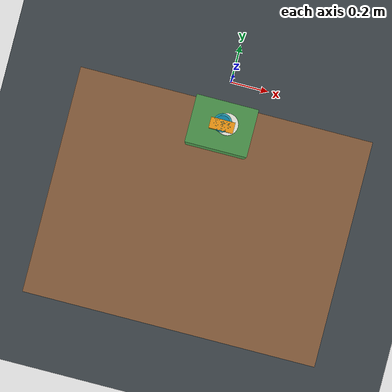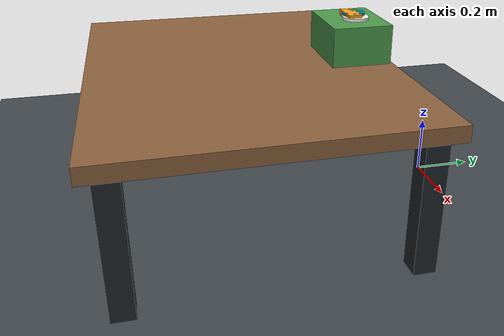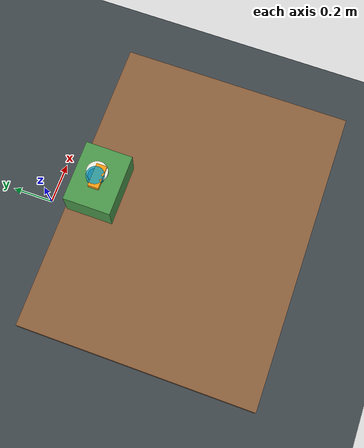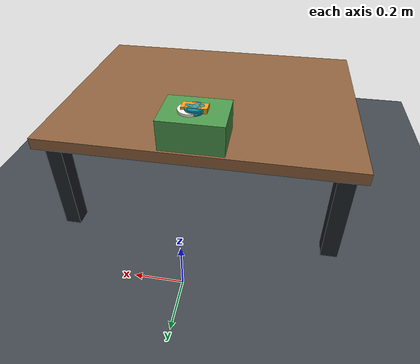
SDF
<?xml version="1.0"?>
<sdf version="1.6">
  <world name="openarm_workcell">
    <gravity>0 0 -9.81</gravity>
    <physics name="ode_physics" type="ode">
      <max_step_size>0.001</max_step_size>
      <real_time_update_rate>1000</real_time_update_rate>
      <real_time_factor>1.0</real_time_factor>
      <ode>
        <solver>
          <type>quick</type>
          <iters>80</iters>
          <sor>1.3</sor>
        </solver>
      </ode>
    </physics>

    <scene>
      <ambient>0.45 0.45 0.45 1</ambient>
      <background>0.72 0.79 0.86 1</background>
      <shadows>true</shadows>
      <grid>true</grid>
    </scene>

    <light name="sun" type="directional">
      <pose>0 0 6 0 0 0</pose>
      <cast_shadows>true</cast_shadows>
      <diffuse>0.85 0.85 0.82 1</diffuse>
      <specular>0.25 0.25 0.25 1</specular>
      <direction>-0.35 -0.25 -1</direction>
      <attenuation>
        <range>1000</range>
        <constant>0.4</constant>
        <linear>0.08</linear>
        <quadratic>0.01</quadratic>
      </attenuation>
    </light>

    <!-- Gazebo/ROS state services: /gazebo/get_entity_state and
         /gazebo/set_entity_state, used by the bimanual carry node to verify
         and reset object poses between test runs. -->
    <plugin name="gazebo_ros_state" filename="libgazebo_ros_state.so">
      <ros><namespace>/gazebo</namespace></ros>
      <update_rate>10.0</update_rate>
    </plugin>

    <model name="ground_plane">
      <static>true</static>
      <link name="ground">
        <collision name="collision">
          <geometry><plane><normal>0 0 1</normal><size>8 8</size></plane></geometry>
          <surface><contact><ode><max_vel>0.1</max_vel><min_depth>0.002</min_depth></ode></contact><friction><ode><mu>1.0</mu><mu2>1.0</mu2></ode></friction></surface>
        </collision>
        <visual name="visual">
          <geometry><plane><normal>0 0 1</normal><size>8 8</size></plane></geometry>
          <material><ambient>0.18 0.20 0.22 1</ambient><diffuse>0.25 0.28 0.30 1</diffuse></material>
        </visual>
      </link>
    </model>

    <!-- The robot faces -Y. Table top surface at z = 0.485; the near edge
         sits at y = -0.20, just in front of the robot body. -->
    <model name="work_table">
      <static>true</static>
      <pose>0 -0.70 0 0 0 0</pose>
      <link name="table">
        <collision name="top_collision">
          <pose>0 0 0.46 0 0 0</pose>
          <geometry><box><size>1.30 1.00 0.05</size></box></geometry>
          <surface><contact><ode><max_vel>0.1</max_vel><min_depth>0.002</min_depth></ode></contact><friction><ode><mu>0.9</mu><mu2>0.9</mu2></ode></friction></surface>
        </collision>
        <visual name="top_visual">
          <pose>0 0 0.46 0 0 0</pose>
          <geometry><box><size>1.30 1.00 0.05</size></box></geometry>
          <material><ambient>0.35 0.24 0.15 1</ambient><diffuse>0.55 0.38 0.24 1</diffuse></material>
        </visual>
        <collision name="leg_fl_collision"><pose>0.58 -0.43 0.225 0 0 0</pose><geometry><box><size>0.07 0.07 0.45</size></box></geometry><surface><contact><ode><max_vel>0.1</max_vel><min_depth>0.002</min_depth></ode></contact></surface></collision>
        <collision name="leg_fr_collision"><pose>-0.58 -0.43 0.225 0 0 0</pose><geometry><box><size>0.07 0.07 0.45</size></box></geometry><surface><contact><ode><max_vel>0.1</max_vel><min_depth>0.002</min_depth></ode></contact></surface></collision>
        <collision name="leg_bl_collision"><pose>0.58 0.43 0.225 0 0 0</pose><geometry><box><size>0.07 0.07 0.45</size></box></geometry><surface><contact><ode><max_vel>0.1</max_vel><min_depth>0.002</min_depth></ode></contact></surface></collision>
        <collision name="leg_br_collision"><pose>-0.58 0.43 0.225 0 0 0</pose><geometry><box><size>0.07 0.07 0.45</size></box></geometry><surface><contact><ode><max_vel>0.1</max_vel><min_depth>0.002</min_depth></ode></contact></surface></collision>
        <visual name="leg_fl_visual"><pose>0.58 -0.43 0.225 0 0 0</pose><geometry><box><size>0.07 0.07 0.45</size></box></geometry><material><diffuse>0.13 0.15 0.17 1</diffuse></material></visual>
        <visual name="leg_fr_visual"><pose>-0.58 -0.43 0.225 0 0 0</pose><geometry><box><size>0.07 0.07 0.45</size></box></geometry><material><diffuse>0.13 0.15 0.17 1</diffuse></material></visual>
        <visual name="leg_bl_visual"><pose>0.58 0.43 0.225 0 0 0</pose><geometry><box><size>0.07 0.07 0.45</size></box></geometry><material><diffuse>0.13 0.15 0.17 1</diffuse></material></visual>
        <visual name="leg_br_visual"><pose>-0.58 0.43 0.225 0 0 0</pose><geometry><box><size>0.07 0.07 0.45</size></box></geometry><material><diffuse>0.13 0.15 0.17 1</diffuse></material></visual>
      </link>
    </model>

    <!-- Grasp-test objects. Start poses sit inside the bimanual workspace
         (robot world frame = gazebo z minus the 0.38 m spawn offset). -->
    <model name="water_bottle">
      <pose>0 -0.30 0.56 0 0 0</pose>
      <link name="bottle">
        <inertial><mass>0.32</mass><inertia><ixx>0.0006</ixx><iyy>0.0006</iyy><izz>0.0003</izz></inertia></inertial>
        <collision name="body"><geometry><cylinder><radius>0.038</radius><length>0.15</length></cylinder></geometry><surface><contact><ode><max_vel>0.1</max_vel><min_depth>0.002</min_depth></ode></contact><friction><ode><mu>0.9</mu><mu2>0.9</mu2></ode></friction></surface></collision>
        <visual name="body_visual"><geometry><cylinder><radius>0.038</radius><length>0.15</length></cylinder></geometry><material><ambient>0.08 0.45 0.52 0.85</ambient><diffuse>0.10 0.65 0.75 0.85</diffuse></material></visual>
        <visual name="cap"><pose>0 0 0.062 0 0 0</pose><geometry><cylinder><radius>0.030</radius><length>0.022</length></cylinder></geometry><material><diffuse>0.08 0.18 0.55 1</diffuse></material></visual>
      </link>
    </model>

    <model name="food_can">
      <pose>0 -0.30 0.55 0 0 0</pose>
      <link name="can">
        <inertial><mass>0.35</mass><inertia><ixx>0.0005</ixx><iyy>0.0005</iyy><izz>0.0002</izz></inertia></inertial>
        <collision name="collision"><geometry><cylinder><radius>0.035</radius><length>0.13</length></cylinder></geometry><surface><contact><ode><max_vel>0.1</max_vel><min_depth>0.002</min_depth></ode></contact></surface></collision>
        <visual name="visual"><geometry><cylinder><radius>0.035</radius><length>0.13</length></cylinder></geometry><material><ambient>0.04 0.18 0.55 1</ambient><diffuse>0.06 0.32 0.85 1</diffuse><specular>0.35 0.35 0.35 1</specular></material></visual>
      </link>
    </model>

    <model name="cereal_box">
      <pose>0 -0.31 0.56 0 0 0</pose>
      <link name="box">
        <inertial><mass>0.28</mass><inertia><ixx>0.0010</ixx><iyy>0.0005</iyy><izz>0.0012</izz></inertia></inertial>
        <collision name="collision"><geometry><box><size>0.10 0.045 0.15</size></box></geometry><surface><contact><ode><max_vel>0.1</max_vel><min_depth>0.002</min_depth></ode></contact></surface></collision>
        <visual name="visual"><geometry><box><size>0.10 0.045 0.15</size></box></geometry><material><ambient>0.92 0.48 0.05 1</ambient><diffuse>0.98 0.62 0.08 1</diffuse></material></visual>
      </link>
    </model>

    <model name="coffee_mug">
      <!-- Yaw +90 deg puts the handle on the robot-facing (-Y) side. -->
      <pose>0.02 -0.30 0.555 0 0 1.5708</pose>
      <link name="mug">
        <inertial><mass>0.25</mass><inertia><ixx>0.0004</ixx><iyy>0.0004</iyy><izz>0.0003</izz></inertia></inertial>
        <collision name="body"><geometry><cylinder><radius>0.045</radius><length>0.14</length></cylinder></geometry><surface><contact><ode><max_vel>0.1</max_vel><min_depth>0.002</min_depth></ode></contact><friction><ode><mu>0.8</mu><mu2>0.8</mu2></ode></friction></surface></collision>
        <collision name="handle_top"><pose>-0.062 0 0.035 0 0 0</pose><geometry><box><size>0.055 0.018 0.018</size></box></geometry><surface><contact><ode><max_vel>0.1</max_vel><min_depth>0.002</min_depth></ode></contact></surface></collision>
        <collision name="handle_side"><pose>-0.088 0 0 0 0 0</pose><geometry><box><size>0.018 0.018 0.080</size></box></geometry><surface><contact><ode><max_vel>0.1</max_vel><min_depth>0.002</min_depth></ode></contact></surface></collision>
        <collision name="handle_bottom"><pose>-0.062 0 -0.035 0 0 0</pose><geometry><box><size>0.055 0.018 0.018</size></box></geometry><surface><contact><ode><max_vel>0.1</max_vel><min_depth>0.002</min_depth></ode></contact></surface></collision>
        <visual name="body_visual"><geometry><cylinder><radius>0.045</radius><length>0.14</length></cylinder></geometry><material><ambient>0.82 0.82 0.78 1</ambient><diffuse>0.95 0.95 0.90 1</diffuse></material></visual>
        <visual name="handle_top_visual"><pose>-0.062 0 0.035 0 0 0</pose><geometry><box><size>0.055 0.018 0.018</size></box></geometry><material><diffuse>0.95 0.95 0.90 1</diffuse></material></visual>
        <visual name="handle_side_visual"><pose>-0.088 0 0 0 0 0</pose><geometry><box><size>0.018 0.018 0.080</size></box></geometry><material><diffuse>0.95 0.95 0.90 1</diffuse></material></visual>
        <visual name="handle_bottom_visual"><pose>-0.062 0 -0.035 0 0 0</pose><geometry><box><size>0.055 0.018 0.018</size></box></geometry><material><diffuse>0.95 0.95 0.90 1</diffuse></material></visual>
      </link>
    </model>

    <model name="apple">
      <pose>0 -0.30 0.532 0 0 0</pose>
      <link name="apple">
        <inertial><mass>0.16</mass><inertia><ixx>0.00013</ixx><iyy>0.00013</iyy><izz>0.00013</izz></inertia></inertial>
        <collision name="collision"><geometry><sphere><radius>0.047</radius></sphere></geometry><surface><contact><ode><max_vel>0.1</max_vel><min_depth>0.002</min_depth></ode></contact><friction><ode><mu>0.9</mu><mu2>0.9</mu2></ode></friction></surface></collision>
        <visual name="fruit"><geometry><sphere><radius>0.047</radius></sphere></geometry><material><ambient>0.55 0.03 0.025 1</ambient><diffuse>0.82 0.05 0.04 1</diffuse><specular>0.25 0.25 0.25 1</specular></material></visual>
        <visual name="stem"><pose>0 0 0.052 0 0 0</pose><geometry><cylinder><radius>0.004</radius><length>0.025</length></cylinder></geometry><material><diffuse>0.18 0.08 0.025 1</diffuse></material></visual>
      </link>
    </model>

    <!-- Large object 1: tissue box, 17 x 12 x 9.5 cm. -->
    <model name="tissue_box">
      <pose>0.02 -0.30 0.5325 0 0 0</pose>
      <link name="box">
        <inertial><mass>0.45</mass><inertia><ixx>0.0016</ixx><iyy>0.0010</iyy><izz>0.0021</izz></inertia></inertial>
        <collision name="collision"><geometry><box><size>0.17 0.12 0.095</size></box></geometry><surface><contact><ode><max_vel>0.1</max_vel><min_depth>0.002</min_depth></ode></contact></surface></collision>
        <visual name="visual"><geometry><box><size>0.17 0.12 0.095</size></box></geometry><material><ambient>0.75 0.20 0.35 1</ambient><diffuse>0.90 0.30 0.45 1</diffuse></material></visual>
      </link>
    </model>

    <!-- Large object 2: storage crate, 26 x 20 x 13 cm, too large for the
         gripper opening - grasped with the dual top-press strategy. -->
    <model name="storage_box">
      <pose>0 -0.31 0.55 0 0 0</pose>
      <link name="box">
        <inertial><mass>0.90</mass><inertia><ixx>0.0055</ixx><iyy>0.0045</iyy><izz>0.0070</izz></inertia></inertial>
        <collision name="collision"><geometry><box><size>0.26 0.20 0.13</size></box></geometry><surface><contact><ode><max_vel>0.1</max_vel><min_depth>0.002</min_depth></ode></contact></surface></collision>
        <visual name="visual"><geometry><box><size>0.26 0.20 0.13</size></box></geometry><material><ambient>0.20 0.42 0.20 1</ambient><diffuse>0.30 0.60 0.30 1</diffuse></material></visual>
      </link>
    </model>

    <gui fullscreen="false">
      <camera name="user_camera">
        <pose>1.85 1.45 1.30 0 0.33 -2.45</pose>
        <view_controller>orbit</view_controller>
      </camera>
    </gui>
  </world>
</sdf>
